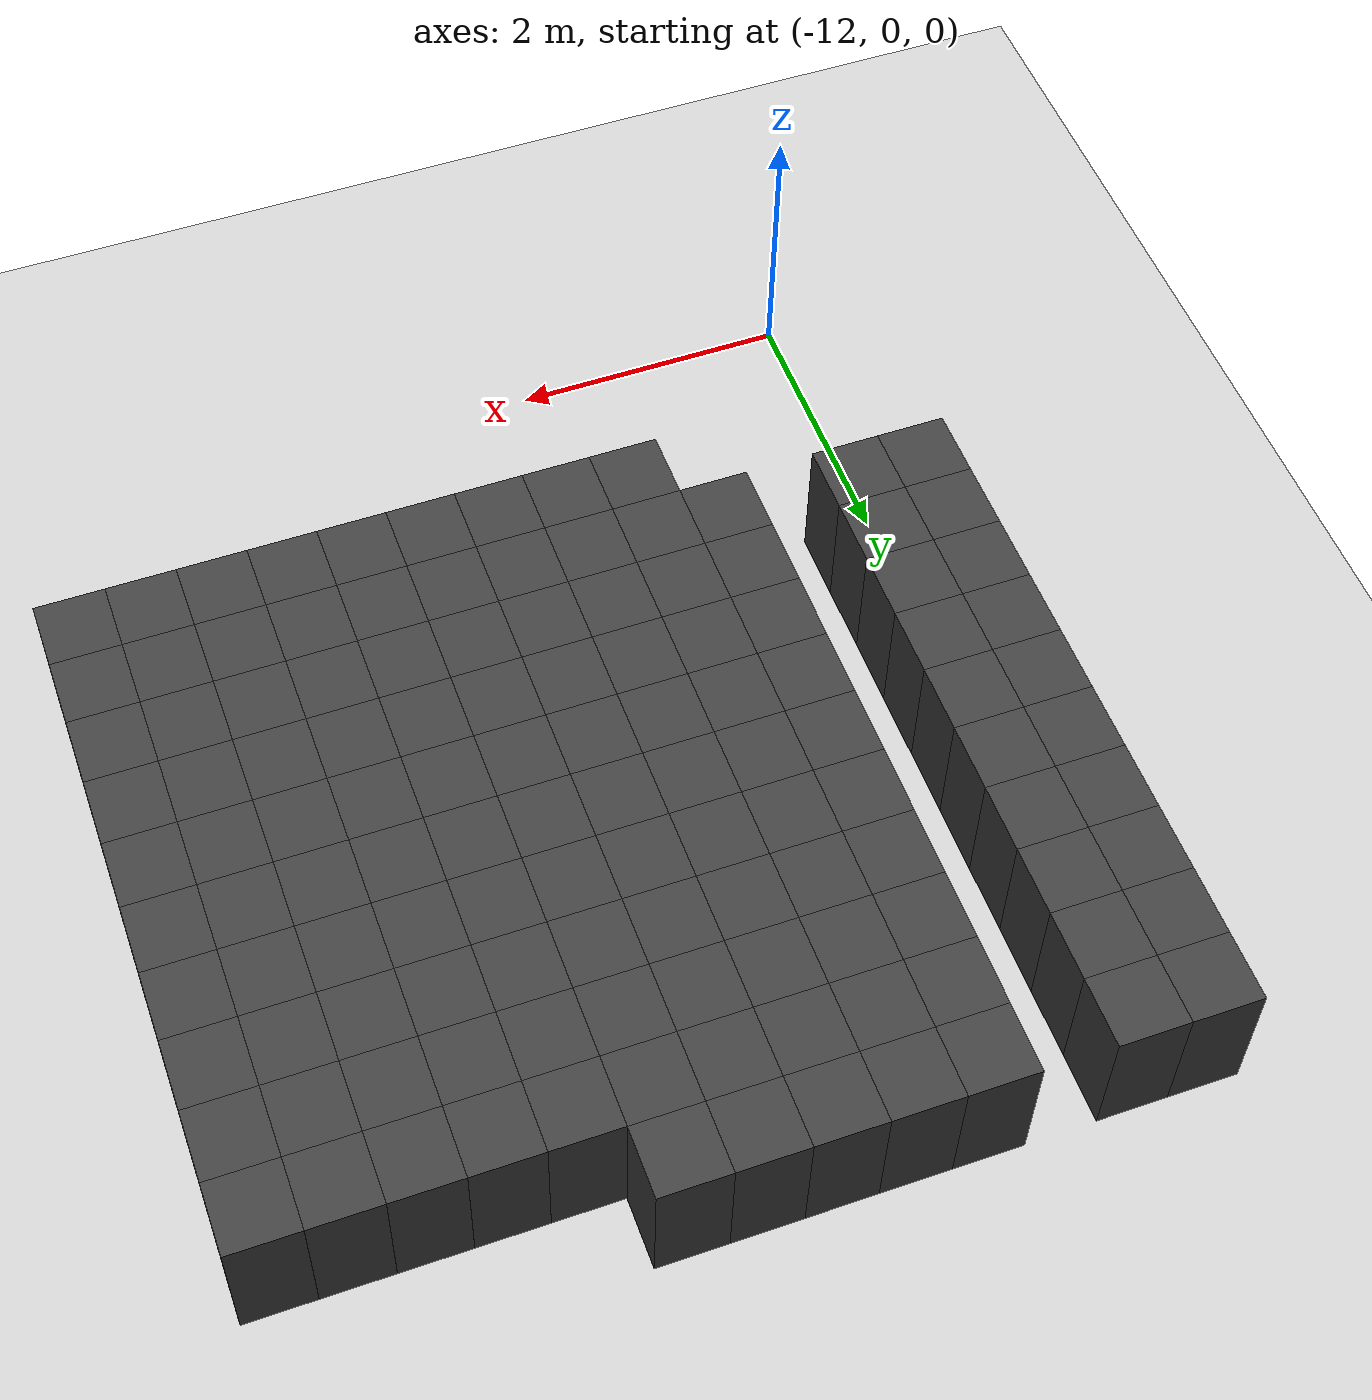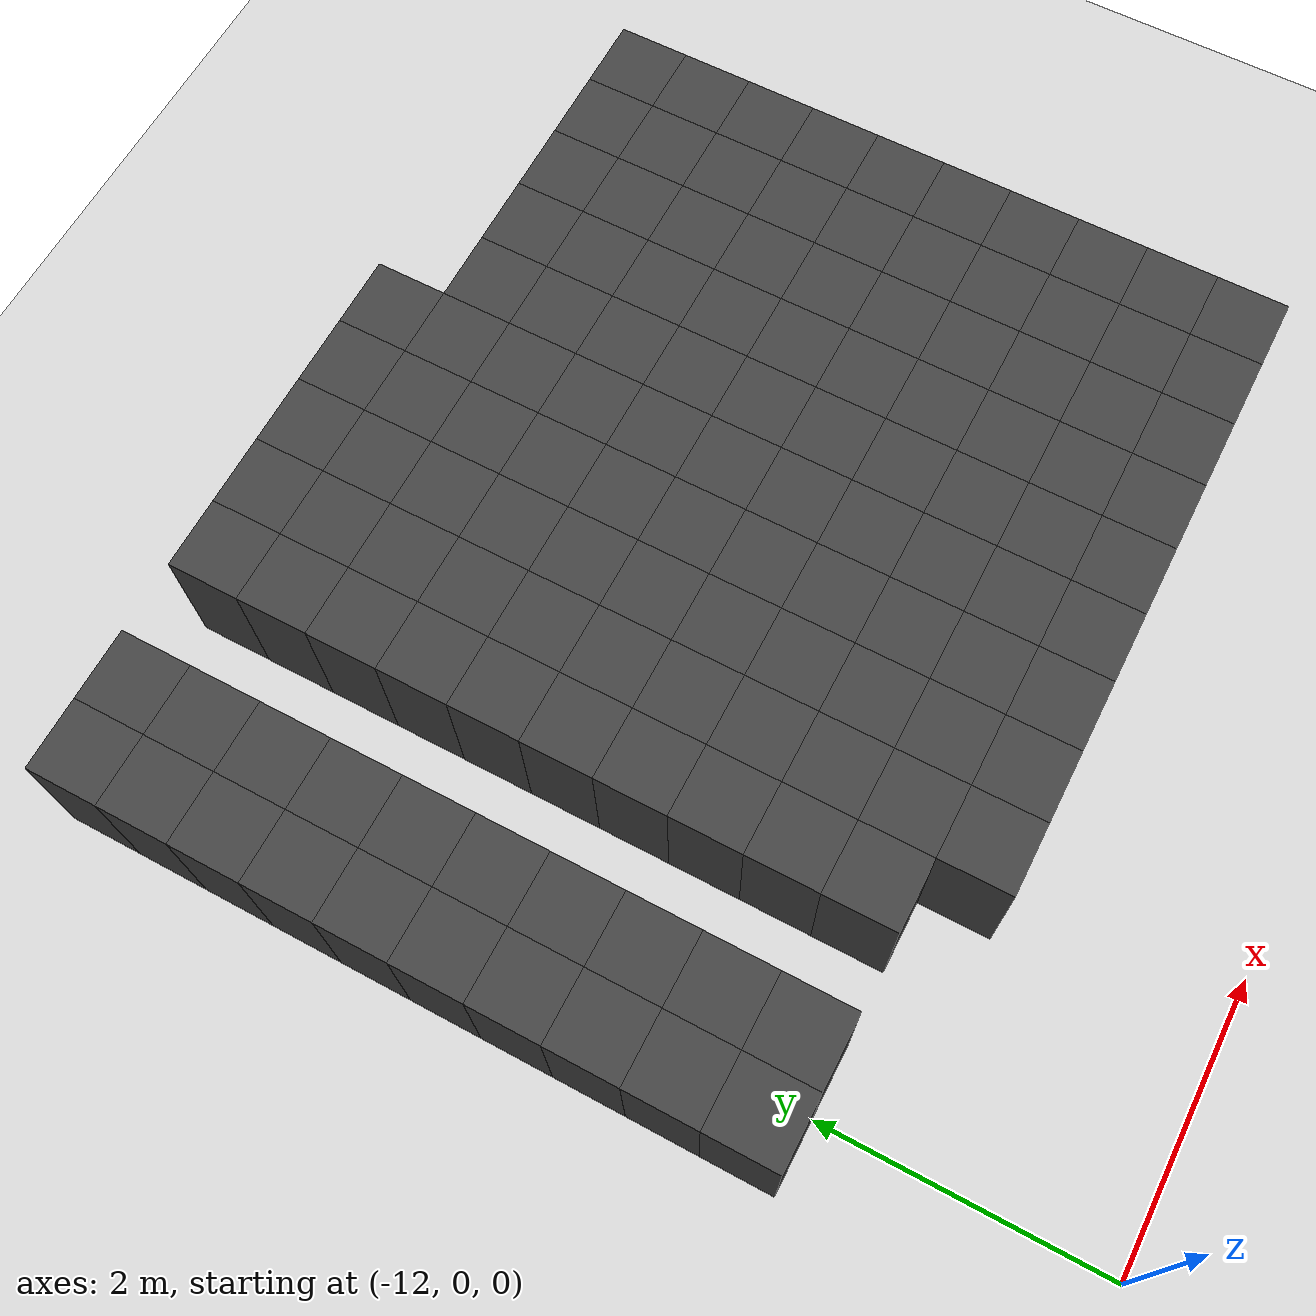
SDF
<sdf version="1.7">
 <world name="map_10726">
  <model name="ground_plane">
   <static>true</static>
   <link name="link">
    <collision name="collision">
     <geometry><plane><normal>0 0 1</normal><size>200 200</size></plane></geometry>
    </collision>
    <visual name="visual">
     <geometry><plane><normal>0 0 1</normal><size>200 200</size></plane></geometry>
     <material><ambient>0.8 0.8 0.8 1</ambient><diffuse>0.8 0.8 0.8 1</diffuse></material>
    </visual>
   </link>
  </model>
  <model name="maze_environment">
   <static>true</static>
   <link name="wall_502">
    <pose>-12.250 6.750 0.500 0 0 0</pose>
    <collision name="col"><geometry><box><size>0.5 0.5 1.0</size></box></geometry></collision>
    <visual name="vis">
     <geometry><box><size>0.5 0.5 1.0</size></box></geometry>
     <material><ambient>0.15 0.15 0.15 1</ambient><diffuse>0.25 0.25 0.25 1</diffuse></material>
    </visual>
   </link>
   <link name="wall_503">
    <pose>-11.750 6.750 0.500 0 0 0</pose>
    <collision name="col"><geometry><box><size>0.5 0.5 1.0</size></box></geometry></collision>
    <visual name="vis">
     <geometry><box><size>0.5 0.5 1.0</size></box></geometry>
     <material><ambient>0.15 0.15 0.15 1</ambient><diffuse>0.25 0.25 0.25 1</diffuse></material>
    </visual>
   </link>
   <link name="wall_504">
    <pose>-10.750 6.750 0.500 0 0 0</pose>
    <collision name="col"><geometry><box><size>0.5 0.5 1.0</size></box></geometry></collision>
    <visual name="vis">
     <geometry><box><size>0.5 0.5 1.0</size></box></geometry>
     <material><ambient>0.15 0.15 0.15 1</ambient><diffuse>0.25 0.25 0.25 1</diffuse></material>
    </visual>
   </link>
   <link name="wall_505">
    <pose>-10.250 6.750 0.500 0 0 0</pose>
    <collision name="col"><geometry><box><size>0.5 0.5 1.0</size></box></geometry></collision>
    <visual name="vis">
     <geometry><box><size>0.5 0.5 1.0</size></box></geometry>
     <material><ambient>0.15 0.15 0.15 1</ambient><diffuse>0.25 0.25 0.25 1</diffuse></material>
    </visual>
   </link>
   <link name="wall_506">
    <pose>-9.750 6.750 0.500 0 0 0</pose>
    <collision name="col"><geometry><box><size>0.5 0.5 1.0</size></box></geometry></collision>
    <visual name="vis">
     <geometry><box><size>0.5 0.5 1.0</size></box></geometry>
     <material><ambient>0.15 0.15 0.15 1</ambient><diffuse>0.25 0.25 0.25 1</diffuse></material>
    </visual>
   </link>
   <link name="wall_507">
    <pose>-9.250 6.750 0.500 0 0 0</pose>
    <collision name="col"><geometry><box><size>0.5 0.5 1.0</size></box></geometry></collision>
    <visual name="vis">
     <geometry><box><size>0.5 0.5 1.0</size></box></geometry>
     <material><ambient>0.15 0.15 0.15 1</ambient><diffuse>0.25 0.25 0.25 1</diffuse></material>
    </visual>
   </link>
   <link name="wall_508">
    <pose>-8.750 6.750 0.500 0 0 0</pose>
    <collision name="col"><geometry><box><size>0.5 0.5 1.0</size></box></geometry></collision>
    <visual name="vis">
     <geometry><box><size>0.5 0.5 1.0</size></box></geometry>
     <material><ambient>0.15 0.15 0.15 1</ambient><diffuse>0.25 0.25 0.25 1</diffuse></material>
    </visual>
   </link>
   <link name="wall_543">
    <pose>-12.250 6.250 0.500 0 0 0</pose>
    <collision name="col"><geometry><box><size>0.5 0.5 1.0</size></box></geometry></collision>
    <visual name="vis">
     <geometry><box><size>0.5 0.5 1.0</size></box></geometry>
     <material><ambient>0.15 0.15 0.15 1</ambient><diffuse>0.25 0.25 0.25 1</diffuse></material>
    </visual>
   </link>
   <link name="wall_544">
    <pose>-11.750 6.250 0.500 0 0 0</pose>
    <collision name="col"><geometry><box><size>0.5 0.5 1.0</size></box></geometry></collision>
    <visual name="vis">
     <geometry><box><size>0.5 0.5 1.0</size></box></geometry>
     <material><ambient>0.15 0.15 0.15 1</ambient><diffuse>0.25 0.25 0.25 1</diffuse></material>
    </visual>
   </link>
   <link name="wall_545">
    <pose>-10.750 6.250 0.500 0 0 0</pose>
    <collision name="col"><geometry><box><size>0.5 0.5 1.0</size></box></geometry></collision>
    <visual name="vis">
     <geometry><box><size>0.5 0.5 1.0</size></box></geometry>
     <material><ambient>0.15 0.15 0.15 1</ambient><diffuse>0.25 0.25 0.25 1</diffuse></material>
    </visual>
   </link>
   <link name="wall_546">
    <pose>-10.250 6.250 0.500 0 0 0</pose>
    <collision name="col"><geometry><box><size>0.5 0.5 1.0</size></box></geometry></collision>
    <visual name="vis">
     <geometry><box><size>0.5 0.5 1.0</size></box></geometry>
     <material><ambient>0.15 0.15 0.15 1</ambient><diffuse>0.25 0.25 0.25 1</diffuse></material>
    </visual>
   </link>
   <link name="wall_547">
    <pose>-9.750 6.250 0.500 0 0 0</pose>
    <collision name="col"><geometry><box><size>0.5 0.5 1.0</size></box></geometry></collision>
    <visual name="vis">
     <geometry><box><size>0.5 0.5 1.0</size></box></geometry>
     <material><ambient>0.15 0.15 0.15 1</ambient><diffuse>0.25 0.25 0.25 1</diffuse></material>
    </visual>
   </link>
   <link name="wall_548">
    <pose>-9.250 6.250 0.500 0 0 0</pose>
    <collision name="col"><geometry><box><size>0.5 0.5 1.0</size></box></geometry></collision>
    <visual name="vis">
     <geometry><box><size>0.5 0.5 1.0</size></box></geometry>
     <material><ambient>0.15 0.15 0.15 1</ambient><diffuse>0.25 0.25 0.25 1</diffuse></material>
    </visual>
   </link>
   <link name="wall_549">
    <pose>-8.750 6.250 0.500 0 0 0</pose>
    <collision name="col"><geometry><box><size>0.5 0.5 1.0</size></box></geometry></collision>
    <visual name="vis">
     <geometry><box><size>0.5 0.5 1.0</size></box></geometry>
     <material><ambient>0.15 0.15 0.15 1</ambient><diffuse>0.25 0.25 0.25 1</diffuse></material>
    </visual>
   </link>
   <link name="wall_550">
    <pose>-8.250 6.250 0.500 0 0 0</pose>
    <collision name="col"><geometry><box><size>0.5 0.5 1.0</size></box></geometry></collision>
    <visual name="vis">
     <geometry><box><size>0.5 0.5 1.0</size></box></geometry>
     <material><ambient>0.15 0.15 0.15 1</ambient><diffuse>0.25 0.25 0.25 1</diffuse></material>
    </visual>
   </link>
   <link name="wall_551">
    <pose>-7.750 6.250 0.500 0 0 0</pose>
    <collision name="col"><geometry><box><size>0.5 0.5 1.0</size></box></geometry></collision>
    <visual name="vis">
     <geometry><box><size>0.5 0.5 1.0</size></box></geometry>
     <material><ambient>0.15 0.15 0.15 1</ambient><diffuse>0.25 0.25 0.25 1</diffuse></material>
    </visual>
   </link>
   <link name="wall_552">
    <pose>-7.250 6.250 0.500 0 0 0</pose>
    <collision name="col"><geometry><box><size>0.5 0.5 1.0</size></box></geometry></collision>
    <visual name="vis">
     <geometry><box><size>0.5 0.5 1.0</size></box></geometry>
     <material><ambient>0.15 0.15 0.15 1</ambient><diffuse>0.25 0.25 0.25 1</diffuse></material>
    </visual>
   </link>
   <link name="wall_553">
    <pose>-6.750 6.250 0.500 0 0 0</pose>
    <collision name="col"><geometry><box><size>0.5 0.5 1.0</size></box></geometry></collision>
    <visual name="vis">
     <geometry><box><size>0.5 0.5 1.0</size></box></geometry>
     <material><ambient>0.15 0.15 0.15 1</ambient><diffuse>0.25 0.25 0.25 1</diffuse></material>
    </visual>
   </link>
   <link name="wall_554">
    <pose>-6.250 6.250 0.500 0 0 0</pose>
    <collision name="col"><geometry><box><size>0.5 0.5 1.0</size></box></geometry></collision>
    <visual name="vis">
     <geometry><box><size>0.5 0.5 1.0</size></box></geometry>
     <material><ambient>0.15 0.15 0.15 1</ambient><diffuse>0.25 0.25 0.25 1</diffuse></material>
    </visual>
   </link>
   <link name="wall_584">
    <pose>-12.250 5.750 0.500 0 0 0</pose>
    <collision name="col"><geometry><box><size>0.5 0.5 1.0</size></box></geometry></collision>
    <visual name="vis">
     <geometry><box><size>0.5 0.5 1.0</size></box></geometry>
     <material><ambient>0.15 0.15 0.15 1</ambient><diffuse>0.25 0.25 0.25 1</diffuse></material>
    </visual>
   </link>
   <link name="wall_585">
    <pose>-11.750 5.750 0.500 0 0 0</pose>
    <collision name="col"><geometry><box><size>0.5 0.5 1.0</size></box></geometry></collision>
    <visual name="vis">
     <geometry><box><size>0.5 0.5 1.0</size></box></geometry>
     <material><ambient>0.15 0.15 0.15 1</ambient><diffuse>0.25 0.25 0.25 1</diffuse></material>
    </visual>
   </link>
   <link name="wall_586">
    <pose>-10.750 5.750 0.500 0 0 0</pose>
    <collision name="col"><geometry><box><size>0.5 0.5 1.0</size></box></geometry></collision>
    <visual name="vis">
     <geometry><box><size>0.5 0.5 1.0</size></box></geometry>
     <material><ambient>0.15 0.15 0.15 1</ambient><diffuse>0.25 0.25 0.25 1</diffuse></material>
    </visual>
   </link>
   <link name="wall_587">
    <pose>-10.250 5.750 0.500 0 0 0</pose>
    <collision name="col"><geometry><box><size>0.5 0.5 1.0</size></box></geometry></collision>
    <visual name="vis">
     <geometry><box><size>0.5 0.5 1.0</size></box></geometry>
     <material><ambient>0.15 0.15 0.15 1</ambient><diffuse>0.25 0.25 0.25 1</diffuse></material>
    </visual>
   </link>
   <link name="wall_588">
    <pose>-9.750 5.750 0.500 0 0 0</pose>
    <collision name="col"><geometry><box><size>0.5 0.5 1.0</size></box></geometry></collision>
    <visual name="vis">
     <geometry><box><size>0.5 0.5 1.0</size></box></geometry>
     <material><ambient>0.15 0.15 0.15 1</ambient><diffuse>0.25 0.25 0.25 1</diffuse></material>
    </visual>
   </link>
   <link name="wall_589">
    <pose>-9.250 5.750 0.500 0 0 0</pose>
    <collision name="col"><geometry><box><size>0.5 0.5 1.0</size></box></geometry></collision>
    <visual name="vis">
     <geometry><box><size>0.5 0.5 1.0</size></box></geometry>
     <material><ambient>0.15 0.15 0.15 1</ambient><diffuse>0.25 0.25 0.25 1</diffuse></material>
    </visual>
   </link>
   <link name="wall_590">
    <pose>-8.750 5.750 0.500 0 0 0</pose>
    <collision name="col"><geometry><box><size>0.5 0.5 1.0</size></box></geometry></collision>
    <visual name="vis">
     <geometry><box><size>0.5 0.5 1.0</size></box></geometry>
     <material><ambient>0.15 0.15 0.15 1</ambient><diffuse>0.25 0.25 0.25 1</diffuse></material>
    </visual>
   </link>
   <link name="wall_591">
    <pose>-8.250 5.750 0.500 0 0 0</pose>
    <collision name="col"><geometry><box><size>0.5 0.5 1.0</size></box></geometry></collision>
    <visual name="vis">
     <geometry><box><size>0.5 0.5 1.0</size></box></geometry>
     <material><ambient>0.15 0.15 0.15 1</ambient><diffuse>0.25 0.25 0.25 1</diffuse></material>
    </visual>
   </link>
   <link name="wall_592">
    <pose>-7.750 5.750 0.500 0 0 0</pose>
    <collision name="col"><geometry><box><size>0.5 0.5 1.0</size></box></geometry></collision>
    <visual name="vis">
     <geometry><box><size>0.5 0.5 1.0</size></box></geometry>
     <material><ambient>0.15 0.15 0.15 1</ambient><diffuse>0.25 0.25 0.25 1</diffuse></material>
    </visual>
   </link>
   <link name="wall_593">
    <pose>-7.250 5.750 0.500 0 0 0</pose>
    <collision name="col"><geometry><box><size>0.5 0.5 1.0</size></box></geometry></collision>
    <visual name="vis">
     <geometry><box><size>0.5 0.5 1.0</size></box></geometry>
     <material><ambient>0.15 0.15 0.15 1</ambient><diffuse>0.25 0.25 0.25 1</diffuse></material>
    </visual>
   </link>
   <link name="wall_594">
    <pose>-6.750 5.750 0.500 0 0 0</pose>
    <collision name="col"><geometry><box><size>0.5 0.5 1.0</size></box></geometry></collision>
    <visual name="vis">
     <geometry><box><size>0.5 0.5 1.0</size></box></geometry>
     <material><ambient>0.15 0.15 0.15 1</ambient><diffuse>0.25 0.25 0.25 1</diffuse></material>
    </visual>
   </link>
   <link name="wall_595">
    <pose>-6.250 5.750 0.500 0 0 0</pose>
    <collision name="col"><geometry><box><size>0.5 0.5 1.0</size></box></geometry></collision>
    <visual name="vis">
     <geometry><box><size>0.5 0.5 1.0</size></box></geometry>
     <material><ambient>0.15 0.15 0.15 1</ambient><diffuse>0.25 0.25 0.25 1</diffuse></material>
    </visual>
   </link>
   <link name="wall_632">
    <pose>-12.250 5.250 0.500 0 0 0</pose>
    <collision name="col"><geometry><box><size>0.5 0.5 1.0</size></box></geometry></collision>
    <visual name="vis">
     <geometry><box><size>0.5 0.5 1.0</size></box></geometry>
     <material><ambient>0.15 0.15 0.15 1</ambient><diffuse>0.25 0.25 0.25 1</diffuse></material>
    </visual>
   </link>
   <link name="wall_633">
    <pose>-11.750 5.250 0.500 0 0 0</pose>
    <collision name="col"><geometry><box><size>0.5 0.5 1.0</size></box></geometry></collision>
    <visual name="vis">
     <geometry><box><size>0.5 0.5 1.0</size></box></geometry>
     <material><ambient>0.15 0.15 0.15 1</ambient><diffuse>0.25 0.25 0.25 1</diffuse></material>
    </visual>
   </link>
   <link name="wall_634">
    <pose>-10.750 5.250 0.500 0 0 0</pose>
    <collision name="col"><geometry><box><size>0.5 0.5 1.0</size></box></geometry></collision>
    <visual name="vis">
     <geometry><box><size>0.5 0.5 1.0</size></box></geometry>
     <material><ambient>0.15 0.15 0.15 1</ambient><diffuse>0.25 0.25 0.25 1</diffuse></material>
    </visual>
   </link>
   <link name="wall_635">
    <pose>-10.250 5.250 0.500 0 0 0</pose>
    <collision name="col"><geometry><box><size>0.5 0.5 1.0</size></box></geometry></collision>
    <visual name="vis">
     <geometry><box><size>0.5 0.5 1.0</size></box></geometry>
     <material><ambient>0.15 0.15 0.15 1</ambient><diffuse>0.25 0.25 0.25 1</diffuse></material>
    </visual>
   </link>
   <link name="wall_636">
    <pose>-9.750 5.250 0.500 0 0 0</pose>
    <collision name="col"><geometry><box><size>0.5 0.5 1.0</size></box></geometry></collision>
    <visual name="vis">
     <geometry><box><size>0.5 0.5 1.0</size></box></geometry>
     <material><ambient>0.15 0.15 0.15 1</ambient><diffuse>0.25 0.25 0.25 1</diffuse></material>
    </visual>
   </link>
   <link name="wall_637">
    <pose>-9.250 5.250 0.500 0 0 0</pose>
    <collision name="col"><geometry><box><size>0.5 0.5 1.0</size></box></geometry></collision>
    <visual name="vis">
     <geometry><box><size>0.5 0.5 1.0</size></box></geometry>
     <material><ambient>0.15 0.15 0.15 1</ambient><diffuse>0.25 0.25 0.25 1</diffuse></material>
    </visual>
   </link>
   <link name="wall_638">
    <pose>-8.750 5.250 0.500 0 0 0</pose>
    <collision name="col"><geometry><box><size>0.5 0.5 1.0</size></box></geometry></collision>
    <visual name="vis">
     <geometry><box><size>0.5 0.5 1.0</size></box></geometry>
     <material><ambient>0.15 0.15 0.15 1</ambient><diffuse>0.25 0.25 0.25 1</diffuse></material>
    </visual>
   </link>
   <link name="wall_639">
    <pose>-8.250 5.250 0.500 0 0 0</pose>
    <collision name="col"><geometry><box><size>0.5 0.5 1.0</size></box></geometry></collision>
    <visual name="vis">
     <geometry><box><size>0.5 0.5 1.0</size></box></geometry>
     <material><ambient>0.15 0.15 0.15 1</ambient><diffuse>0.25 0.25 0.25 1</diffuse></material>
    </visual>
   </link>
   <link name="wall_640">
    <pose>-7.750 5.250 0.500 0 0 0</pose>
    <collision name="col"><geometry><box><size>0.5 0.5 1.0</size></box></geometry></collision>
    <visual name="vis">
     <geometry><box><size>0.5 0.5 1.0</size></box></geometry>
     <material><ambient>0.15 0.15 0.15 1</ambient><diffuse>0.25 0.25 0.25 1</diffuse></material>
    </visual>
   </link>
   <link name="wall_641">
    <pose>-7.250 5.250 0.500 0 0 0</pose>
    <collision name="col"><geometry><box><size>0.5 0.5 1.0</size></box></geometry></collision>
    <visual name="vis">
     <geometry><box><size>0.5 0.5 1.0</size></box></geometry>
     <material><ambient>0.15 0.15 0.15 1</ambient><diffuse>0.25 0.25 0.25 1</diffuse></material>
    </visual>
   </link>
   <link name="wall_642">
    <pose>-6.750 5.250 0.500 0 0 0</pose>
    <collision name="col"><geometry><box><size>0.5 0.5 1.0</size></box></geometry></collision>
    <visual name="vis">
     <geometry><box><size>0.5 0.5 1.0</size></box></geometry>
     <material><ambient>0.15 0.15 0.15 1</ambient><diffuse>0.25 0.25 0.25 1</diffuse></material>
    </visual>
   </link>
   <link name="wall_643">
    <pose>-6.250 5.250 0.500 0 0 0</pose>
    <collision name="col"><geometry><box><size>0.5 0.5 1.0</size></box></geometry></collision>
    <visual name="vis">
     <geometry><box><size>0.5 0.5 1.0</size></box></geometry>
     <material><ambient>0.15 0.15 0.15 1</ambient><diffuse>0.25 0.25 0.25 1</diffuse></material>
    </visual>
   </link>
   <link name="wall_680">
    <pose>-12.250 4.750 0.500 0 0 0</pose>
    <collision name="col"><geometry><box><size>0.5 0.5 1.0</size></box></geometry></collision>
    <visual name="vis">
     <geometry><box><size>0.5 0.5 1.0</size></box></geometry>
     <material><ambient>0.15 0.15 0.15 1</ambient><diffuse>0.25 0.25 0.25 1</diffuse></material>
    </visual>
   </link>
   <link name="wall_681">
    <pose>-11.750 4.750 0.500 0 0 0</pose>
    <collision name="col"><geometry><box><size>0.5 0.5 1.0</size></box></geometry></collision>
    <visual name="vis">
     <geometry><box><size>0.5 0.5 1.0</size></box></geometry>
     <material><ambient>0.15 0.15 0.15 1</ambient><diffuse>0.25 0.25 0.25 1</diffuse></material>
    </visual>
   </link>
   <link name="wall_682">
    <pose>-10.750 4.750 0.500 0 0 0</pose>
    <collision name="col"><geometry><box><size>0.5 0.5 1.0</size></box></geometry></collision>
    <visual name="vis">
     <geometry><box><size>0.5 0.5 1.0</size></box></geometry>
     <material><ambient>0.15 0.15 0.15 1</ambient><diffuse>0.25 0.25 0.25 1</diffuse></material>
    </visual>
   </link>
   <link name="wall_683">
    <pose>-10.250 4.750 0.500 0 0 0</pose>
    <collision name="col"><geometry><box><size>0.5 0.5 1.0</size></box></geometry></collision>
    <visual name="vis">
     <geometry><box><size>0.5 0.5 1.0</size></box></geometry>
     <material><ambient>0.15 0.15 0.15 1</ambient><diffuse>0.25 0.25 0.25 1</diffuse></material>
    </visual>
   </link>
   <link name="wall_684">
    <pose>-9.750 4.750 0.500 0 0 0</pose>
    <collision name="col"><geometry><box><size>0.5 0.5 1.0</size></box></geometry></collision>
    <visual name="vis">
     <geometry><box><size>0.5 0.5 1.0</size></box></geometry>
     <material><ambient>0.15 0.15 0.15 1</ambient><diffuse>0.25 0.25 0.25 1</diffuse></material>
    </visual>
   </link>
   <link name="wall_685">
    <pose>-9.250 4.750 0.500 0 0 0</pose>
    <collision name="col"><geometry><box><size>0.5 0.5 1.0</size></box></geometry></collision>
    <visual name="vis">
     <geometry><box><size>0.5 0.5 1.0</size></box></geometry>
     <material><ambient>0.15 0.15 0.15 1</ambient><diffuse>0.25 0.25 0.25 1</diffuse></material>
    </visual>
   </link>
   <link name="wall_686">
    <pose>-8.750 4.750 0.500 0 0 0</pose>
    <collision name="col"><geometry><box><size>0.5 0.5 1.0</size></box></geometry></collision>
    <visual name="vis">
     <geometry><box><size>0.5 0.5 1.0</size></box></geometry>
     <material><ambient>0.15 0.15 0.15 1</ambient><diffuse>0.25 0.25 0.25 1</diffuse></material>
    </visual>
   </link>
   <link name="wall_687">
    <pose>-8.250 4.750 0.500 0 0 0</pose>
    <collision name="col"><geometry><box><size>0.5 0.5 1.0</size></box></geometry></collision>
    <visual name="vis">
     <geometry><box><size>0.5 0.5 1.0</size></box></geometry>
     <material><ambient>0.15 0.15 0.15 1</ambient><diffuse>0.25 0.25 0.25 1</diffuse></material>
    </visual>
   </link>
   <link name="wall_688">
    <pose>-7.750 4.750 0.500 0 0 0</pose>
    <collision name="col"><geometry><box><size>0.5 0.5 1.0</size></box></geometry></collision>
    <visual name="vis">
     <geometry><box><size>0.5 0.5 1.0</size></box></geometry>
     <material><ambient>0.15 0.15 0.15 1</ambient><diffuse>0.25 0.25 0.25 1</diffuse></material>
    </visual>
   </link>
   <link name="wall_689">
    <pose>-7.250 4.750 0.500 0 0 0</pose>
    <collision name="col"><geometry><box><size>0.5 0.5 1.0</size></box></geometry></collision>
    <visual name="vis">
     <geometry><box><size>0.5 0.5 1.0</size></box></geometry>
     <material><ambient>0.15 0.15 0.15 1</ambient><diffuse>0.25 0.25 0.25 1</diffuse></material>
    </visual>
   </link>
   <link name="wall_690">
    <pose>-6.750 4.750 0.500 0 0 0</pose>
    <collision name="col"><geometry><box><size>0.5 0.5 1.0</size></box></geometry></collision>
    <visual name="vis">
     <geometry><box><size>0.5 0.5 1.0</size></box></geometry>
     <material><ambient>0.15 0.15 0.15 1</ambient><diffuse>0.25 0.25 0.25 1</diffuse></material>
    </visual>
   </link>
   <link name="wall_691">
    <pose>-6.250 4.750 0.500 0 0 0</pose>
    <collision name="col"><geometry><box><size>0.5 0.5 1.0</size></box></geometry></collision>
    <visual name="vis">
     <geometry><box><size>0.5 0.5 1.0</size></box></geometry>
     <material><ambient>0.15 0.15 0.15 1</ambient><diffuse>0.25 0.25 0.25 1</diffuse></material>
    </visual>
   </link>
   <link name="wall_728">
    <pose>-12.250 4.250 0.500 0 0 0</pose>
    <collision name="col"><geometry><box><size>0.5 0.5 1.0</size></box></geometry></collision>
    <visual name="vis">
     <geometry><box><size>0.5 0.5 1.0</size></box></geometry>
     <material><ambient>0.15 0.15 0.15 1</ambient><diffuse>0.25 0.25 0.25 1</diffuse></material>
    </visual>
   </link>
   <link name="wall_729">
    <pose>-11.750 4.250 0.500 0 0 0</pose>
    <collision name="col"><geometry><box><size>0.5 0.5 1.0</size></box></geometry></collision>
    <visual name="vis">
     <geometry><box><size>0.5 0.5 1.0</size></box></geometry>
     <material><ambient>0.15 0.15 0.15 1</ambient><diffuse>0.25 0.25 0.25 1</diffuse></material>
    </visual>
   </link>
   <link name="wall_730">
    <pose>-10.750 4.250 0.500 0 0 0</pose>
    <collision name="col"><geometry><box><size>0.5 0.5 1.0</size></box></geometry></collision>
    <visual name="vis">
     <geometry><box><size>0.5 0.5 1.0</size></box></geometry>
     <material><ambient>0.15 0.15 0.15 1</ambient><diffuse>0.25 0.25 0.25 1</diffuse></material>
    </visual>
   </link>
   <link name="wall_731">
    <pose>-10.250 4.250 0.500 0 0 0</pose>
    <collision name="col"><geometry><box><size>0.5 0.5 1.0</size></box></geometry></collision>
    <visual name="vis">
     <geometry><box><size>0.5 0.5 1.0</size></box></geometry>
     <material><ambient>0.15 0.15 0.15 1</ambient><diffuse>0.25 0.25 0.25 1</diffuse></material>
    </visual>
   </link>
   <link name="wall_732">
    <pose>-9.750 4.250 0.500 0 0 0</pose>
    <collision name="col"><geometry><box><size>0.5 0.5 1.0</size></box></geometry></collision>
    <visual name="vis">
     <geometry><box><size>0.5 0.5 1.0</size></box></geometry>
     <material><ambient>0.15 0.15 0.15 1</ambient><diffuse>0.25 0.25 0.25 1</diffuse></material>
    </visual>
   </link>
   <link name="wall_733">
    <pose>-9.250 4.250 0.500 0 0 0</pose>
    <collision name="col"><geometry><box><size>0.5 0.5 1.0</size></box></geometry></collision>
    <visual name="vis">
     <geometry><box><size>0.5 0.5 1.0</size></box></geometry>
     <material><ambient>0.15 0.15 0.15 1</ambient><diffuse>0.25 0.25 0.25 1</diffuse></material>
    </visual>
   </link>
   <link name="wall_734">
    <pose>-8.750 4.250 0.500 0 0 0</pose>
    <collision name="col"><geometry><box><size>0.5 0.5 1.0</size></box></geometry></collision>
    <visual name="vis">
     <geometry><box><size>0.5 0.5 1.0</size></box></geometry>
     <material><ambient>0.15 0.15 0.15 1</ambient><diffuse>0.25 0.25 0.25 1</diffuse></material>
    </visual>
   </link>
   <link name="wall_735">
    <pose>-8.250 4.250 0.500 0 0 0</pose>
    <collision name="col"><geometry><box><size>0.5 0.5 1.0</size></box></geometry></collision>
    <visual name="vis">
     <geometry><box><size>0.5 0.5 1.0</size></box></geometry>
     <material><ambient>0.15 0.15 0.15 1</ambient><diffuse>0.25 0.25 0.25 1</diffuse></material>
    </visual>
   </link>
   <link name="wall_736">
    <pose>-7.750 4.250 0.500 0 0 0</pose>
    <collision name="col"><geometry><box><size>0.5 0.5 1.0</size></box></geometry></collision>
    <visual name="vis">
     <geometry><box><size>0.5 0.5 1.0</size></box></geometry>
     <material><ambient>0.15 0.15 0.15 1</ambient><diffuse>0.25 0.25 0.25 1</diffuse></material>
    </visual>
   </link>
   <link name="wall_737">
    <pose>-7.250 4.250 0.500 0 0 0</pose>
    <collision name="col"><geometry><box><size>0.5 0.5 1.0</size></box></geometry></collision>
    <visual name="vis">
     <geometry><box><size>0.5 0.5 1.0</size></box></geometry>
     <material><ambient>0.15 0.15 0.15 1</ambient><diffuse>0.25 0.25 0.25 1</diffuse></material>
    </visual>
   </link>
   <link name="wall_738">
    <pose>-6.750 4.250 0.500 0 0 0</pose>
    <collision name="col"><geometry><box><size>0.5 0.5 1.0</size></box></geometry></collision>
    <visual name="vis">
     <geometry><box><size>0.5 0.5 1.0</size></box></geometry>
     <material><ambient>0.15 0.15 0.15 1</ambient><diffuse>0.25 0.25 0.25 1</diffuse></material>
    </visual>
   </link>
   <link name="wall_739">
    <pose>-6.250 4.250 0.500 0 0 0</pose>
    <collision name="col"><geometry><box><size>0.5 0.5 1.0</size></box></geometry></collision>
    <visual name="vis">
     <geometry><box><size>0.5 0.5 1.0</size></box></geometry>
     <material><ambient>0.15 0.15 0.15 1</ambient><diffuse>0.25 0.25 0.25 1</diffuse></material>
    </visual>
   </link>
   <link name="wall_776">
    <pose>-12.250 3.750 0.500 0 0 0</pose>
    <collision name="col"><geometry><box><size>0.5 0.5 1.0</size></box></geometry></collision>
    <visual name="vis">
     <geometry><box><size>0.5 0.5 1.0</size></box></geometry>
     <material><ambient>0.15 0.15 0.15 1</ambient><diffuse>0.25 0.25 0.25 1</diffuse></material>
    </visual>
   </link>
   <link name="wall_777">
    <pose>-11.750 3.750 0.500 0 0 0</pose>
    <collision name="col"><geometry><box><size>0.5 0.5 1.0</size></box></geometry></collision>
    <visual name="vis">
     <geometry><box><size>0.5 0.5 1.0</size></box></geometry>
     <material><ambient>0.15 0.15 0.15 1</ambient><diffuse>0.25 0.25 0.25 1</diffuse></material>
    </visual>
   </link>
   <link name="wall_778">
    <pose>-10.750 3.750 0.500 0 0 0</pose>
    <collision name="col"><geometry><box><size>0.5 0.5 1.0</size></box></geometry></collision>
    <visual name="vis">
     <geometry><box><size>0.5 0.5 1.0</size></box></geometry>
     <material><ambient>0.15 0.15 0.15 1</ambient><diffuse>0.25 0.25 0.25 1</diffuse></material>
    </visual>
   </link>
   <link name="wall_779">
    <pose>-10.250 3.750 0.500 0 0 0</pose>
    <collision name="col"><geometry><box><size>0.5 0.5 1.0</size></box></geometry></collision>
    <visual name="vis">
     <geometry><box><size>0.5 0.5 1.0</size></box></geometry>
     <material><ambient>0.15 0.15 0.15 1</ambient><diffuse>0.25 0.25 0.25 1</diffuse></material>
    </visual>
   </link>
   <link name="wall_780">
    <pose>-9.750 3.750 0.500 0 0 0</pose>
    <collision name="col"><geometry><box><size>0.5 0.5 1.0</size></box></geometry></collision>
    <visual name="vis">
     <geometry><box><size>0.5 0.5 1.0</size></box></geometry>
     <material><ambient>0.15 0.15 0.15 1</ambient><diffuse>0.25 0.25 0.25 1</diffuse></material>
    </visual>
   </link>
   <link name="wall_781">
    <pose>-9.250 3.750 0.500 0 0 0</pose>
    <collision name="col"><geometry><box><size>0.5 0.5 1.0</size></box></geometry></collision>
    <visual name="vis">
     <geometry><box><size>0.5 0.5 1.0</size></box></geometry>
     <material><ambient>0.15 0.15 0.15 1</ambient><diffuse>0.25 0.25 0.25 1</diffuse></material>
    </visual>
   </link>
   <link name="wall_782">
    <pose>-8.750 3.750 0.500 0 0 0</pose>
    <collision name="col"><geometry><box><size>0.5 0.5 1.0</size></box></geometry></collision>
    <visual name="vis">
     <geometry><box><size>0.5 0.5 1.0</size></box></geometry>
     <material><ambient>0.15 0.15 0.15 1</ambient><diffuse>0.25 0.25 0.25 1</diffuse></material>
    </visual>
   </link>
   <link name="wall_783">
    <pose>-8.250 3.750 0.500 0 0 0</pose>
    <collision name="col"><geometry><box><size>0.5 0.5 1.0</size></box></geometry></collision>
    <visual name="vis">
     <geometry><box><size>0.5 0.5 1.0</size></box></geometry>
     <material><ambient>0.15 0.15 0.15 1</ambient><diffuse>0.25 0.25 0.25 1</diffuse></material>
    </visual>
   </link>
   <link name="wall_784">
    <pose>-7.750 3.750 0.500 0 0 0</pose>
    <collision name="col"><geometry><box><size>0.5 0.5 1.0</size></box></geometry></collision>
    <visual name="vis">
     <geometry><box><size>0.5 0.5 1.0</size></box></geometry>
     <material><ambient>0.15 0.15 0.15 1</ambient><diffuse>0.25 0.25 0.25 1</diffuse></material>
    </visual>
   </link>
   <link name="wall_785">
    <pose>-7.250 3.750 0.500 0 0 0</pose>
    <collision name="col"><geometry><box><size>0.5 0.5 1.0</size></box></geometry></collision>
    <visual name="vis">
     <geometry><box><size>0.5 0.5 1.0</size></box></geometry>
     <material><ambient>0.15 0.15 0.15 1</ambient><diffuse>0.25 0.25 0.25 1</diffuse></material>
    </visual>
   </link>
   <link name="wall_786">
    <pose>-6.750 3.750 0.500 0 0 0</pose>
    <collision name="col"><geometry><box><size>0.5 0.5 1.0</size></box></geometry></collision>
    <visual name="vis">
     <geometry><box><size>0.5 0.5 1.0</size></box></geometry>
     <material><ambient>0.15 0.15 0.15 1</ambient><diffuse>0.25 0.25 0.25 1</diffuse></material>
    </visual>
   </link>
   <link name="wall_787">
    <pose>-6.250 3.750 0.500 0 0 0</pose>
    <collision name="col"><geometry><box><size>0.5 0.5 1.0</size></box></geometry></collision>
    <visual name="vis">
     <geometry><box><size>0.5 0.5 1.0</size></box></geometry>
     <material><ambient>0.15 0.15 0.15 1</ambient><diffuse>0.25 0.25 0.25 1</diffuse></material>
    </visual>
   </link>
   <link name="wall_824">
    <pose>-12.250 3.250 0.500 0 0 0</pose>
    <collision name="col"><geometry><box><size>0.5 0.5 1.0</size></box></geometry></collision>
    <visual name="vis">
     <geometry><box><size>0.5 0.5 1.0</size></box></geometry>
     <material><ambient>0.15 0.15 0.15 1</ambient><diffuse>0.25 0.25 0.25 1</diffuse></material>
    </visual>
   </link>
   <link name="wall_825">
    <pose>-11.750 3.250 0.500 0 0 0</pose>
    <collision name="col"><geometry><box><size>0.5 0.5 1.0</size></box></geometry></collision>
    <visual name="vis">
     <geometry><box><size>0.5 0.5 1.0</size></box></geometry>
     <material><ambient>0.15 0.15 0.15 1</ambient><diffuse>0.25 0.25 0.25 1</diffuse></material>
    </visual>
   </link>
   <link name="wall_826">
    <pose>-10.750 3.250 0.500 0 0 0</pose>
    <collision name="col"><geometry><box><size>0.5 0.5 1.0</size></box></geometry></collision>
    <visual name="vis">
     <geometry><box><size>0.5 0.5 1.0</size></box></geometry>
     <material><ambient>0.15 0.15 0.15 1</ambient><diffuse>0.25 0.25 0.25 1</diffuse></material>
    </visual>
   </link>
   <link name="wall_827">
    <pose>-10.250 3.250 0.500 0 0 0</pose>
    <collision name="col"><geometry><box><size>0.5 0.5 1.0</size></box></geometry></collision>
    <visual name="vis">
     <geometry><box><size>0.5 0.5 1.0</size></box></geometry>
     <material><ambient>0.15 0.15 0.15 1</ambient><diffuse>0.25 0.25 0.25 1</diffuse></material>
    </visual>
   </link>
   <link name="wall_828">
    <pose>-9.750 3.250 0.500 0 0 0</pose>
    <collision name="col"><geometry><box><size>0.5 0.5 1.0</size></box></geometry></collision>
    <visual name="vis">
     <geometry><box><size>0.5 0.5 1.0</size></box></geometry>
     <material><ambient>0.15 0.15 0.15 1</ambient><diffuse>0.25 0.25 0.25 1</diffuse></material>
    </visual>
   </link>
   <link name="wall_829">
    <pose>-9.250 3.250 0.500 0 0 0</pose>
    <collision name="col"><geometry><box><size>0.5 0.5 1.0</size></box></geometry></collision>
    <visual name="vis">
     <geometry><box><size>0.5 0.5 1.0</size></box></geometry>
     <material><ambient>0.15 0.15 0.15 1</ambient><diffuse>0.25 0.25 0.25 1</diffuse></material>
    </visual>
   </link>
   <link name="wall_830">
    <pose>-8.750 3.250 0.500 0 0 0</pose>
    <collision name="col"><geometry><box><size>0.5 0.5 1.0</size></box></geometry></collision>
    <visual name="vis">
     <geometry><box><size>0.5 0.5 1.0</size></box></geometry>
     <material><ambient>0.15 0.15 0.15 1</ambient><diffuse>0.25 0.25 0.25 1</diffuse></material>
    </visual>
   </link>
   <link name="wall_831">
    <pose>-8.250 3.250 0.500 0 0 0</pose>
    <collision name="col"><geometry><box><size>0.5 0.5 1.0</size></box></geometry></collision>
    <visual name="vis">
     <geometry><box><size>0.5 0.5 1.0</size></box></geometry>
     <material><ambient>0.15 0.15 0.15 1</ambient><diffuse>0.25 0.25 0.25 1</diffuse></material>
    </visual>
   </link>
   <link name="wall_832">
    <pose>-7.750 3.250 0.500 0 0 0</pose>
    <collision name="col"><geometry><box><size>0.5 0.5 1.0</size></box></geometry></collision>
    <visual name="vis">
     <geometry><box><size>0.5 0.5 1.0</size></box></geometry>
     <material><ambient>0.15 0.15 0.15 1</ambient><diffuse>0.25 0.25 0.25 1</diffuse></material>
    </visual>
   </link>
   <link name="wall_833">
    <pose>-7.250 3.250 0.500 0 0 0</pose>
    <collision name="col"><geometry><box><size>0.5 0.5 1.0</size></box></geometry></collision>
    <visual name="vis">
     <geometry><box><size>0.5 0.5 1.0</size></box></geometry>
     <material><ambient>0.15 0.15 0.15 1</ambient><diffuse>0.25 0.25 0.25 1</diffuse></material>
    </visual>
   </link>
   <link name="wall_834">
    <pose>-6.750 3.250 0.500 0 0 0</pose>
    <collision name="col"><geometry><box><size>0.5 0.5 1.0</size></box></geometry></collision>
    <visual name="vis">
     <geometry><box><size>0.5 0.5 1.0</size></box></geometry>
     <material><ambient>0.15 0.15 0.15 1</ambient><diffuse>0.25 0.25 0.25 1</diffuse></material>
    </visual>
   </link>
   <link name="wall_835">
    <pose>-6.250 3.250 0.500 0 0 0</pose>
    <collision name="col"><geometry><box><size>0.5 0.5 1.0</size></box></geometry></collision>
    <visual name="vis">
     <geometry><box><size>0.5 0.5 1.0</size></box></geometry>
     <material><ambient>0.15 0.15 0.15 1</ambient><diffuse>0.25 0.25 0.25 1</diffuse></material>
    </visual>
   </link>
   <link name="wall_872">
    <pose>-12.250 2.750 0.500 0 0 0</pose>
    <collision name="col"><geometry><box><size>0.5 0.5 1.0</size></box></geometry></collision>
    <visual name="vis">
     <geometry><box><size>0.5 0.5 1.0</size></box></geometry>
     <material><ambient>0.15 0.15 0.15 1</ambient><diffuse>0.25 0.25 0.25 1</diffuse></material>
    </visual>
   </link>
   <link name="wall_873">
    <pose>-11.750 2.750 0.500 0 0 0</pose>
    <collision name="col"><geometry><box><size>0.5 0.5 1.0</size></box></geometry></collision>
    <visual name="vis">
     <geometry><box><size>0.5 0.5 1.0</size></box></geometry>
     <material><ambient>0.15 0.15 0.15 1</ambient><diffuse>0.25 0.25 0.25 1</diffuse></material>
    </visual>
   </link>
   <link name="wall_874">
    <pose>-10.750 2.750 0.500 0 0 0</pose>
    <collision name="col"><geometry><box><size>0.5 0.5 1.0</size></box></geometry></collision>
    <visual name="vis">
     <geometry><box><size>0.5 0.5 1.0</size></box></geometry>
     <material><ambient>0.15 0.15 0.15 1</ambient><diffuse>0.25 0.25 0.25 1</diffuse></material>
    </visual>
   </link>
   <link name="wall_875">
    <pose>-10.250 2.750 0.500 0 0 0</pose>
    <collision name="col"><geometry><box><size>0.5 0.5 1.0</size></box></geometry></collision>
    <visual name="vis">
     <geometry><box><size>0.5 0.5 1.0</size></box></geometry>
     <material><ambient>0.15 0.15 0.15 1</ambient><diffuse>0.25 0.25 0.25 1</diffuse></material>
    </visual>
   </link>
   <link name="wall_876">
    <pose>-9.750 2.750 0.500 0 0 0</pose>
    <collision name="col"><geometry><box><size>0.5 0.5 1.0</size></box></geometry></collision>
    <visual name="vis">
     <geometry><box><size>0.5 0.5 1.0</size></box></geometry>
     <material><ambient>0.15 0.15 0.15 1</ambient><diffuse>0.25 0.25 0.25 1</diffuse></material>
    </visual>
   </link>
   <link name="wall_877">
    <pose>-9.250 2.750 0.500 0 0 0</pose>
    <collision name="col"><geometry><box><size>0.5 0.5 1.0</size></box></geometry></collision>
    <visual name="vis">
     <geometry><box><size>0.5 0.5 1.0</size></box></geometry>
     <material><ambient>0.15 0.15 0.15 1</ambient><diffuse>0.25 0.25 0.25 1</diffuse></material>
    </visual>
   </link>
   <link name="wall_878">
    <pose>-8.750 2.750 0.500 0 0 0</pose>
    <collision name="col"><geometry><box><size>0.5 0.5 1.0</size></box></geometry></collision>
    <visual name="vis">
     <geometry><box><size>0.5 0.5 1.0</size></box></geometry>
     <material><ambient>0.15 0.15 0.15 1</ambient><diffuse>0.25 0.25 0.25 1</diffuse></material>
    </visual>
   </link>
   <link name="wall_879">
    <pose>-8.250 2.750 0.500 0 0 0</pose>
    <collision name="col"><geometry><box><size>0.5 0.5 1.0</size></box></geometry></collision>
    <visual name="vis">
     <geometry><box><size>0.5 0.5 1.0</size></box></geometry>
     <material><ambient>0.15 0.15 0.15 1</ambient><diffuse>0.25 0.25 0.25 1</diffuse></material>
    </visual>
   </link>
   <link name="wall_880">
    <pose>-7.750 2.750 0.500 0 0 0</pose>
    <collision name="col"><geometry><box><size>0.5 0.5 1.0</size></box></geometry></collision>
    <visual name="vis">
     <geometry><box><size>0.5 0.5 1.0</size></box></geometry>
     <material><ambient>0.15 0.15 0.15 1</ambient><diffuse>0.25 0.25 0.25 1</diffuse></material>
    </visual>
   </link>
   <link name="wall_881">
    <pose>-7.250 2.750 0.500 0 0 0</pose>
    <collision name="col"><geometry><box><size>0.5 0.5 1.0</size></box></geometry></collision>
    <visual name="vis">
     <geometry><box><size>0.5 0.5 1.0</size></box></geometry>
     <material><ambient>0.15 0.15 0.15 1</ambient><diffuse>0.25 0.25 0.25 1</diffuse></material>
    </visual>
   </link>
   <link name="wall_882">
    <pose>-6.750 2.750 0.500 0 0 0</pose>
    <collision name="col"><geometry><box><size>0.5 0.5 1.0</size></box></geometry></collision>
    <visual name="vis">
     <geometry><box><size>0.5 0.5 1.0</size></box></geometry>
     <material><ambient>0.15 0.15 0.15 1</ambient><diffuse>0.25 0.25 0.25 1</diffuse></material>
    </visual>
   </link>
   <link name="wall_883">
    <pose>-6.250 2.750 0.500 0 0 0</pose>
    <collision name="col"><geometry><box><size>0.5 0.5 1.0</size></box></geometry></collision>
    <visual name="vis">
     <geometry><box><size>0.5 0.5 1.0</size></box></geometry>
     <material><ambient>0.15 0.15 0.15 1</ambient><diffuse>0.25 0.25 0.25 1</diffuse></material>
    </visual>
   </link>
   <link name="wall_920">
    <pose>-12.250 2.250 0.500 0 0 0</pose>
    <collision name="col"><geometry><box><size>0.5 0.5 1.0</size></box></geometry></collision>
    <visual name="vis">
     <geometry><box><size>0.5 0.5 1.0</size></box></geometry>
     <material><ambient>0.15 0.15 0.15 1</ambient><diffuse>0.25 0.25 0.25 1</diffuse></material>
    </visual>
   </link>
   <link name="wall_921">
    <pose>-11.750 2.250 0.500 0 0 0</pose>
    <collision name="col"><geometry><box><size>0.5 0.5 1.0</size></box></geometry></collision>
    <visual name="vis">
     <geometry><box><size>0.5 0.5 1.0</size></box></geometry>
     <material><ambient>0.15 0.15 0.15 1</ambient><diffuse>0.25 0.25 0.25 1</diffuse></material>
    </visual>
   </link>
   <link name="wall_922">
    <pose>-10.750 2.250 0.500 0 0 0</pose>
    <collision name="col"><geometry><box><size>0.5 0.5 1.0</size></box></geometry></collision>
    <visual name="vis">
     <geometry><box><size>0.5 0.5 1.0</size></box></geometry>
     <material><ambient>0.15 0.15 0.15 1</ambient><diffuse>0.25 0.25 0.25 1</diffuse></material>
    </visual>
   </link>
   <link name="wall_923">
    <pose>-10.250 2.250 0.500 0 0 0</pose>
    <collision name="col"><geometry><box><size>0.5 0.5 1.0</size></box></geometry></collision>
    <visual name="vis">
     <geometry><box><size>0.5 0.5 1.0</size></box></geometry>
     <material><ambient>0.15 0.15 0.15 1</ambient><diffuse>0.25 0.25 0.25 1</diffuse></material>
    </visual>
   </link>
   <link name="wall_924">
    <pose>-9.750 2.250 0.500 0 0 0</pose>
    <collision name="col"><geometry><box><size>0.5 0.5 1.0</size></box></geometry></collision>
    <visual name="vis">
     <geometry><box><size>0.5 0.5 1.0</size></box></geometry>
     <material><ambient>0.15 0.15 0.15 1</ambient><diffuse>0.25 0.25 0.25 1</diffuse></material>
    </visual>
   </link>
   <link name="wall_925">
    <pose>-9.250 2.250 0.500 0 0 0</pose>
    <collision name="col"><geometry><box><size>0.5 0.5 1.0</size></box></geometry></collision>
    <visual name="vis">
     <geometry><box><size>0.5 0.5 1.0</size></box></geometry>
     <material><ambient>0.15 0.15 0.15 1</ambient><diffuse>0.25 0.25 0.25 1</diffuse></material>
    </visual>
   </link>
   <link name="wall_926">
    <pose>-8.750 2.250 0.500 0 0 0</pose>
    <collision name="col"><geometry><box><size>0.5 0.5 1.0</size></box></geometry></collision>
    <visual name="vis">
     <geometry><box><size>0.5 0.5 1.0</size></box></geometry>
     <material><ambient>0.15 0.15 0.15 1</ambient><diffuse>0.25 0.25 0.25 1</diffuse></material>
    </visual>
   </link>
   <link name="wall_927">
    <pose>-8.250 2.250 0.500 0 0 0</pose>
    <collision name="col"><geometry><box><size>0.5 0.5 1.0</size></box></geometry></collision>
    <visual name="vis">
     <geometry><box><size>0.5 0.5 1.0</size></box></geometry>
     <material><ambient>0.15 0.15 0.15 1</ambient><diffuse>0.25 0.25 0.25 1</diffuse></material>
    </visual>
   </link>
   <link name="wall_928">
    <pose>-7.750 2.250 0.500 0 0 0</pose>
    <collision name="col"><geometry><box><size>0.5 0.5 1.0</size></box></geometry></collision>
    <visual name="vis">
     <geometry><box><size>0.5 0.5 1.0</size></box></geometry>
     <material><ambient>0.15 0.15 0.15 1</ambient><diffuse>0.25 0.25 0.25 1</diffuse></material>
    </visual>
   </link>
   <link name="wall_929">
    <pose>-7.250 2.250 0.500 0 0 0</pose>
    <collision name="col"><geometry><box><size>0.5 0.5 1.0</size></box></geometry></collision>
    <visual name="vis">
     <geometry><box><size>0.5 0.5 1.0</size></box></geometry>
     <material><ambient>0.15 0.15 0.15 1</ambient><diffuse>0.25 0.25 0.25 1</diffuse></material>
    </visual>
   </link>
   <link name="wall_930">
    <pose>-6.750 2.250 0.500 0 0 0</pose>
    <collision name="col"><geometry><box><size>0.5 0.5 1.0</size></box></geometry></collision>
    <visual name="vis">
     <geometry><box><size>0.5 0.5 1.0</size></box></geometry>
     <material><ambient>0.15 0.15 0.15 1</ambient><diffuse>0.25 0.25 0.25 1</diffuse></material>
    </visual>
   </link>
   <link name="wall_931">
    <pose>-6.250 2.250 0.500 0 0 0</pose>
    <collision name="col"><geometry><box><size>0.5 0.5 1.0</size></box></geometry></collision>
    <visual name="vis">
     <geometry><box><size>0.5 0.5 1.0</size></box></geometry>
     <material><ambient>0.15 0.15 0.15 1</ambient><diffuse>0.25 0.25 0.25 1</diffuse></material>
    </visual>
   </link>
   <link name="wall_965">
    <pose>-10.250 1.750 0.500 0 0 0</pose>
    <collision name="col"><geometry><box><size>0.5 0.5 1.0</size></box></geometry></collision>
    <visual name="vis">
     <geometry><box><size>0.5 0.5 1.0</size></box></geometry>
     <material><ambient>0.15 0.15 0.15 1</ambient><diffuse>0.25 0.25 0.25 1</diffuse></material>
    </visual>
   </link>
   <link name="wall_966">
    <pose>-9.750 1.750 0.500 0 0 0</pose>
    <collision name="col"><geometry><box><size>0.5 0.5 1.0</size></box></geometry></collision>
    <visual name="vis">
     <geometry><box><size>0.5 0.5 1.0</size></box></geometry>
     <material><ambient>0.15 0.15 0.15 1</ambient><diffuse>0.25 0.25 0.25 1</diffuse></material>
    </visual>
   </link>
   <link name="wall_967">
    <pose>-9.250 1.750 0.500 0 0 0</pose>
    <collision name="col"><geometry><box><size>0.5 0.5 1.0</size></box></geometry></collision>
    <visual name="vis">
     <geometry><box><size>0.5 0.5 1.0</size></box></geometry>
     <material><ambient>0.15 0.15 0.15 1</ambient><diffuse>0.25 0.25 0.25 1</diffuse></material>
    </visual>
   </link>
   <link name="wall_968">
    <pose>-8.750 1.750 0.500 0 0 0</pose>
    <collision name="col"><geometry><box><size>0.5 0.5 1.0</size></box></geometry></collision>
    <visual name="vis">
     <geometry><box><size>0.5 0.5 1.0</size></box></geometry>
     <material><ambient>0.15 0.15 0.15 1</ambient><diffuse>0.25 0.25 0.25 1</diffuse></material>
    </visual>
   </link>
   <link name="wall_969">
    <pose>-8.250 1.750 0.500 0 0 0</pose>
    <collision name="col"><geometry><box><size>0.5 0.5 1.0</size></box></geometry></collision>
    <visual name="vis">
     <geometry><box><size>0.5 0.5 1.0</size></box></geometry>
     <material><ambient>0.15 0.15 0.15 1</ambient><diffuse>0.25 0.25 0.25 1</diffuse></material>
    </visual>
   </link>
   <link name="wall_970">
    <pose>-7.750 1.750 0.500 0 0 0</pose>
    <collision name="col"><geometry><box><size>0.5 0.5 1.0</size></box></geometry></collision>
    <visual name="vis">
     <geometry><box><size>0.5 0.5 1.0</size></box></geometry>
     <material><ambient>0.15 0.15 0.15 1</ambient><diffuse>0.25 0.25 0.25 1</diffuse></material>
    </visual>
   </link>
   <link name="wall_971">
    <pose>-7.250 1.750 0.500 0 0 0</pose>
    <collision name="col"><geometry><box><size>0.5 0.5 1.0</size></box></geometry></collision>
    <visual name="vis">
     <geometry><box><size>0.5 0.5 1.0</size></box></geometry>
     <material><ambient>0.15 0.15 0.15 1</ambient><diffuse>0.25 0.25 0.25 1</diffuse></material>
    </visual>
   </link>
   <link name="wall_972">
    <pose>-6.750 1.750 0.500 0 0 0</pose>
    <collision name="col"><geometry><box><size>0.5 0.5 1.0</size></box></geometry></collision>
    <visual name="vis">
     <geometry><box><size>0.5 0.5 1.0</size></box></geometry>
     <material><ambient>0.15 0.15 0.15 1</ambient><diffuse>0.25 0.25 0.25 1</diffuse></material>
    </visual>
   </link>
   <link name="wall_973">
    <pose>-6.250 1.750 0.500 0 0 0</pose>
    <collision name="col"><geometry><box><size>0.5 0.5 1.0</size></box></geometry></collision>
    <visual name="vis">
     <geometry><box><size>0.5 0.5 1.0</size></box></geometry>
     <material><ambient>0.15 0.15 0.15 1</ambient><diffuse>0.25 0.25 0.25 1</diffuse></material>
    </visual>
   </link>
  </model>
 </world>
</sdf>
